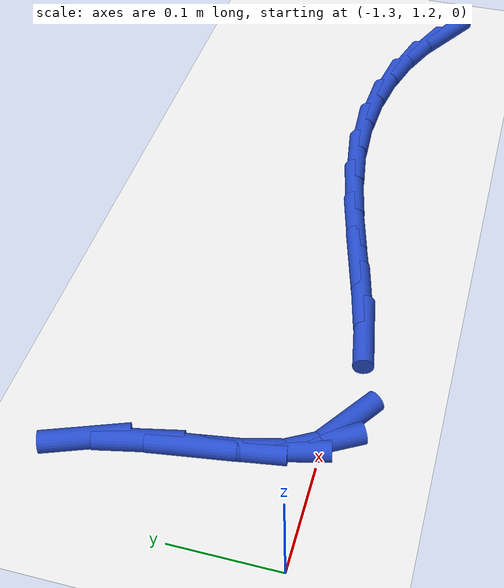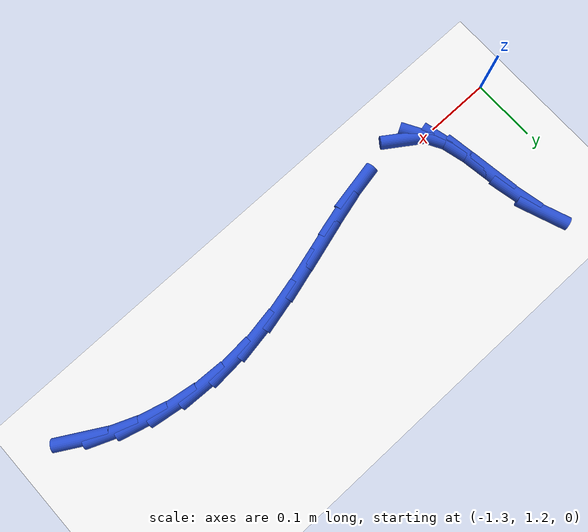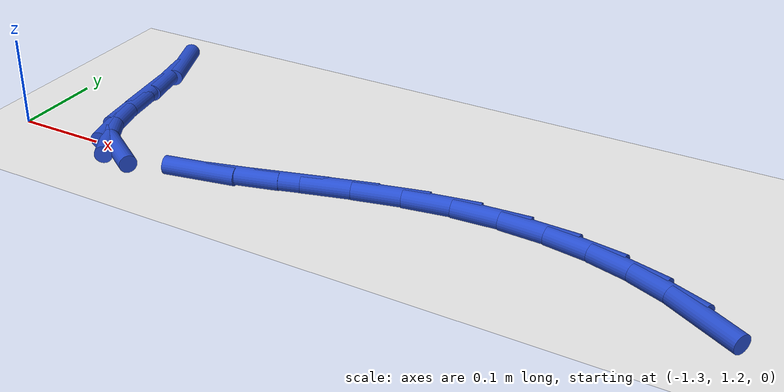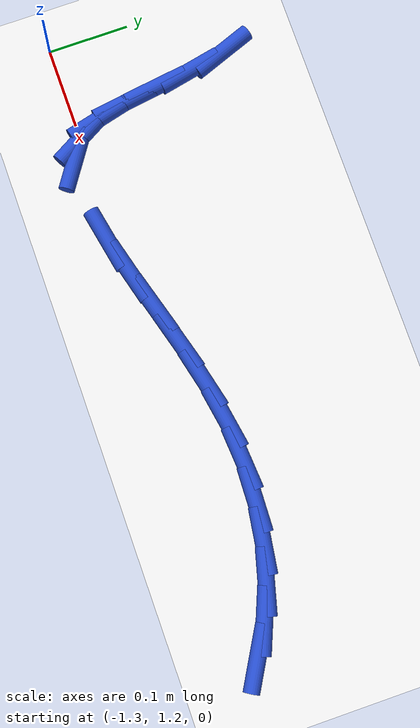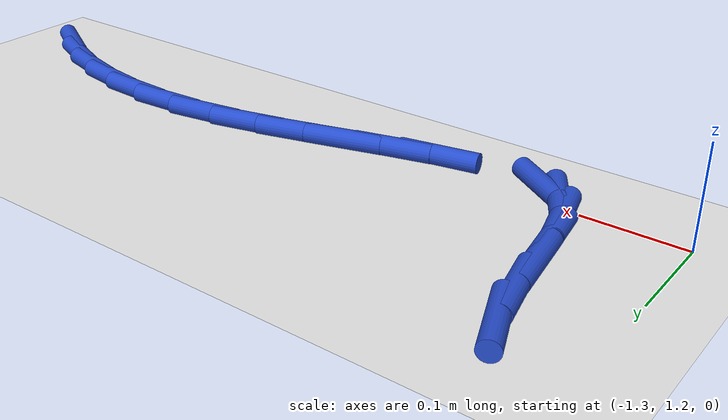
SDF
<sdf version="1.6">
 <world name="default">
  <model name="ground_plane">
   <static>1</static>
   <link name="link">
    <collision name="collision">
     <geometry><plane><normal>0 0 1</normal><size>100 100</size></plane></geometry>
     <surface><friction><ode><mu>100</mu><mu2>50</mu2></ode></friction></surface>
    </collision>
    <visual name="visual">
     <cast_shadows>0</cast_shadows>
     <geometry><plane><normal>0 0 1</normal><size>100 100</size></plane></geometry>
     <material>
      <script><uri>file://media/materials/scripts/gazebo.material</uri><name>Gazebo/WhiteGlow</name></script>
     </material>
    </visual>
   </link>
  </model>
  <model name="line">
   <link name="link_35">
    <pose>-0.5315716059665438 1.195530426191311 0.01 0 1.57 -0.5259253081681029</pose>
    <collision name="collision">
     <geometry><cylinder><radius>0.01</radius><length>0.08</length></cylinder></geometry>
    </collision>
    <visual name="visual">
     <material>
      <script><name>Gazebo/Blue</name><uri>file://media/materials/scripts/gazebo.material</uri></script>
     </material>
     <geometry><cylinder><radius>0.01</radius><length>0.08</length></cylinder></geometry>
    </visual>
   </link>
   <link name="link_36">
    <pose>-0.5684664180013407 1.2169462593053495 0.01 0 1.57 -0.3899341303063244</pose>
    <collision name="collision">
     <geometry><cylinder><radius>0.01</radius><length>0.08</length></cylinder></geometry>
    </collision>
    <visual name="visual">
     <material>
      <script><name>Gazebo/Blue</name><uri>file://media/materials/scripts/gazebo.material</uri></script>
     </material>
     <geometry><cylinder><radius>0.01</radius><length>0.08</length></cylinder></geometry>
    </visual>
   </link>
   <link name="link_37">
    <pose>-0.6096676553680375 1.2338790580488967 0.01 0 1.57 -0.26599187526635876</pose>
    <collision name="collision">
     <geometry><cylinder><radius>0.01</radius><length>0.08</length></cylinder></geometry>
    </collision>
    <visual name="visual">
     <material>
      <script><name>Gazebo/Blue</name><uri>file://media/materials/scripts/gazebo.material</uri></script>
     </material>
     <geometry><cylinder><radius>0.01</radius><length>0.08</length></cylinder></geometry>
    </visual>
   </link>
   <link name="link_38">
    <pose>-0.6544625460194189 1.2460833259750648 0.01 0 1.57 -0.15050755038997266</pose>
    <collision name="collision">
     <geometry><cylinder><radius>0.01</radius><length>0.08</length></cylinder></geometry>
    </collision>
    <visual name="visual">
     <material>
      <script><name>Gazebo/Blue</name><uri>file://media/materials/scripts/gazebo.material</uri></script>
     </material>
     <geometry><cylinder><radius>0.01</radius><length>0.08</length></cylinder></geometry>
    </visual>
   </link>
   <link name="link_39">
    <pose>-0.70213831790827 1.2533135666369666 0.01 0 1.57 -0.04031843557476348</pose>
    <collision name="collision">
     <geometry><cylinder><radius>0.01</radius><length>0.08</length></cylinder></geometry>
    </collision>
    <visual name="visual">
     <material>
      <script><name>Gazebo/Blue</name><uri>file://media/materials/scripts/gazebo.material</uri></script>
     </material>
     <geometry><cylinder><radius>0.01</radius><length>0.08</length></cylinder></geometry>
    </visual>
   </link>
   <link name="link_40">
    <pose>-0.7519821989873758 1.2553242835877143 0.01 0 1.57 0.06723389349264446</pose>
    <collision name="collision">
     <geometry><cylinder><radius>0.01</radius><length>0.08</length></cylinder></geometry>
    </collision>
    <visual name="visual">
     <material>
      <script><name>Gazebo/Blue</name><uri>file://media/materials/scripts/gazebo.material</uri></script>
     </material>
     <geometry><cylinder><radius>0.01</radius><length>0.08</length></cylinder></geometry>
    </visual>
   </link>
   <link name="link_41">
    <pose>-0.8032814110767225 1.2518700313935303 0.01 0 1.57 0.16664566558850424</pose>
    <collision name="collision">
     <geometry><cylinder><radius>0.01</radius><length>0.08</length></cylinder></geometry>
    </collision>
    <visual name="visual">
     <material>
      <script><name>Gazebo/Blue</name><uri>file://media/materials/scripts/gazebo.material</uri></script>
     </material>
     <geometry><cylinder><radius>0.01</radius><length>0.08</length></cylinder></geometry>
    </visual>
   </link>
   <link name="link_42">
    <pose>-0.8552727519905432 1.2431247955065161 0.01 0 1.57 0.23567779062867336</pose>
    <collision name="collision">
     <geometry><cylinder><radius>0.01</radius><length>0.08</length></cylinder></geometry>
    </collision>
    <visual name="visual">
     <material>
      <script><name>Gazebo/Blue</name><uri>file://media/materials/scripts/gazebo.material</uri></script>
     </material>
     <geometry><cylinder><radius>0.01</radius><length>0.08</length></cylinder></geometry>
    </visual>
   </link>
   <link name="link_43">
    <pose>-0.9070204412434096 1.2306980813861648 0.01 0 1.57 0.2737984781586707</pose>
    <collision name="collision">
     <geometry><cylinder><radius>0.01</radius><length>0.08</length></cylinder></geometry>
    </collision>
    <visual name="visual">
     <material>
      <script><name>Gazebo/Blue</name><uri>file://media/materials/scripts/gazebo.material</uri></script>
     </material>
     <geometry><cylinder><radius>0.01</radius><length>0.08</length></cylinder></geometry>
    </visual>
   </link>
   <link name="link_44">
    <pose>-0.9575518079279015 1.2165062519529262 0.01 0 1.57 0.2826636786365664</pose>
    <collision name="collision">
     <geometry><cylinder><radius>0.01</radius><length>0.08</length></cylinder></geometry>
    </collision>
    <visual name="visual">
     <material>
      <script><name>Gazebo/Blue</name><uri>file://media/materials/scripts/gazebo.material</uri></script>
     </material>
     <geometry><cylinder><radius>0.01</radius><length>0.08</length></cylinder></geometry>
    </visual>
   </link>
   <link name="link_45">
    <pose>-1.005894181136599 1.20246567012725 0.01 0 1.57 0.25904745650340677</pose>
    <collision name="collision">
     <geometry><cylinder><radius>0.01</radius><length>0.08</length></cylinder></geometry>
    </collision>
    <visual name="visual">
     <material>
      <script><name>Gazebo/Blue</name><uri>file://media/materials/scripts/gazebo.material</uri></script>
     </material>
     <geometry><cylinder><radius>0.01</radius><length>0.08</length></cylinder></geometry>
    </visual>
   </link>
   <link name="link_46">
    <pose>-1.0510748899620814 1.1904926988295865 0.01 0 1.57 0.19223014374212394</pose>
    <collision name="collision">
     <geometry><cylinder><radius>0.01</radius><length>0.08</length></cylinder></geometry>
    </collision>
    <visual name="visual">
     <material>
      <script><name>Gazebo/Blue</name><uri>file://media/materials/scripts/gazebo.material</uri></script>
     </material>
     <geometry><cylinder><radius>0.01</radius><length>0.08</length></cylinder></geometry>
    </visual>
   </link>
   <link name="link_49">
    <pose>-1.1579203210650353 1.1861430773091683 0.01 0 1.57 -0.595739341852695</pose>
    <collision name="collision">
     <geometry><cylinder><radius>0.01</radius><length>0.08</length></cylinder></geometry>
    </collision>
    <visual name="visual">
     <material>
      <script><name>Gazebo/Blue</name><uri>file://media/materials/scripts/gazebo.material</uri></script>
     </material>
     <geometry><cylinder><radius>0.01</radius><length>0.08</length></cylinder></geometry>
    </visual>
   </link>
   <link name="link_50">
    <pose>-1.180727663283455 1.2016041773280535 0.01 0 1.57 -1.056575846274085</pose>
    <collision name="collision">
     <geometry><cylinder><radius>0.01</radius><length>0.08</length></cylinder></geometry>
    </collision>
    <visual name="visual">
     <material>
      <script><name>Gazebo/Blue</name><uri>file://media/materials/scripts/gazebo.material</uri></script>
     </material>
     <geometry><cylinder><radius>0.01</radius><length>0.08</length></cylinder></geometry>
    </visual>
   </link>
   <link name="link_51">
    <pose>-1.195817657465123 1.2283162517087955 0.01 0 1.57 -1.3226920176395807</pose>
    <collision name="collision">
     <geometry><cylinder><radius>0.01</radius><length>0.08</length></cylinder></geometry>
    </collision>
    <visual name="visual">
     <material>
      <script><name>Gazebo/Blue</name><uri>file://media/materials/scripts/gazebo.material</uri></script>
     </material>
     <geometry><cylinder><radius>0.01</radius><length>0.08</length></cylinder></geometry>
    </visual>
   </link>
   <link name="link_52">
    <pose>-1.2050054575980225 1.264585276328136 0.01 0 1.57 -1.423941028695141</pose>
    <collision name="collision">
     <geometry><cylinder><radius>0.01</radius><length>0.08</length></cylinder></geometry>
    </collision>
    <visual name="visual">
     <material>
      <script><name>Gazebo/Blue</name><uri>file://media/materials/scripts/gazebo.material</uri></script>
     </material>
     <geometry><cylinder><radius>0.01</radius><length>0.08</length></cylinder></geometry>
    </visual>
   </link>
   <link name="link_53">
    <pose>-1.211304009851146 1.307166020106271 0.01 0 1.57 -1.4308234794827706</pose>
    <collision name="collision">
     <geometry><cylinder><radius>0.01</radius><length>0.08</length></cylinder></geometry>
    </collision>
    <visual name="visual">
     <material>
      <script><name>Gazebo/Blue</name><uri>file://media/materials/scripts/gazebo.material</uri></script>
     </material>
     <geometry><cylinder><radius>0.01</radius><length>0.08</length></cylinder></geometry>
    </visual>
   </link>
   <link name="link_54">
    <pose>-1.2177340236779317 1.3528031980817412 0.01 0 1.57 -1.3629582814847445</pose>
    <collision name="collision">
     <geometry><cylinder><radius>0.01</radius><length>0.08</length></cylinder></geometry>
    </collision>
    <visual name="visual">
     <material>
      <script><name>Gazebo/Blue</name><uri>file://media/materials/scripts/gazebo.material</uri></script>
     </material>
     <geometry><cylinder><radius>0.01</radius><length>0.08</length></cylinder></geometry>
    </visual>
   </link>
   <link name="link_55">
    <pose>-1.2273162085318172 1.398241525293087 0.01 0 1.57 -1.211796109861053</pose>
    <collision name="collision">
     <geometry><cylinder><radius>0.01</radius><length>0.08</length></cylinder></geometry>
    </collision>
    <visual name="visual">
     <material>
      <script><name>Gazebo/Blue</name><uri>file://media/materials/scripts/gazebo.material</uri></script>
     </material>
     <geometry><cylinder><radius>0.01</radius><length>0.08</length></cylinder></geometry>
    </visual>
   </link>
  </model>
 </world>
</sdf>
